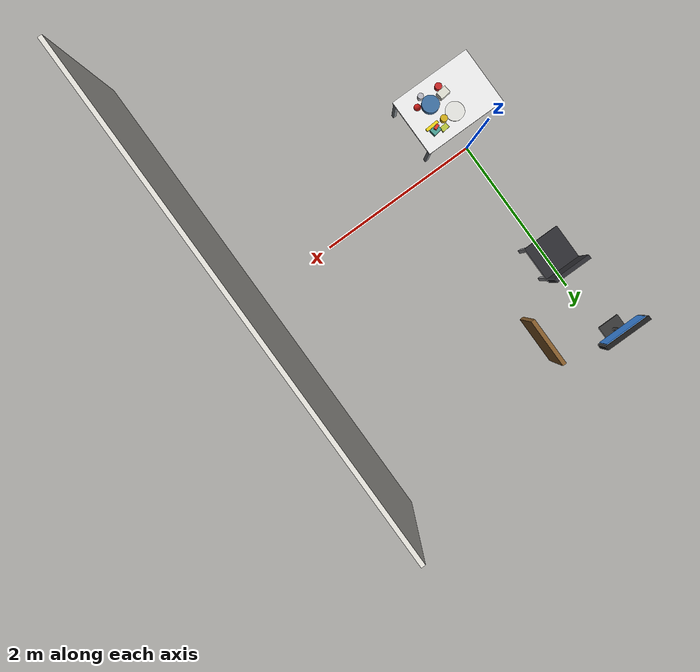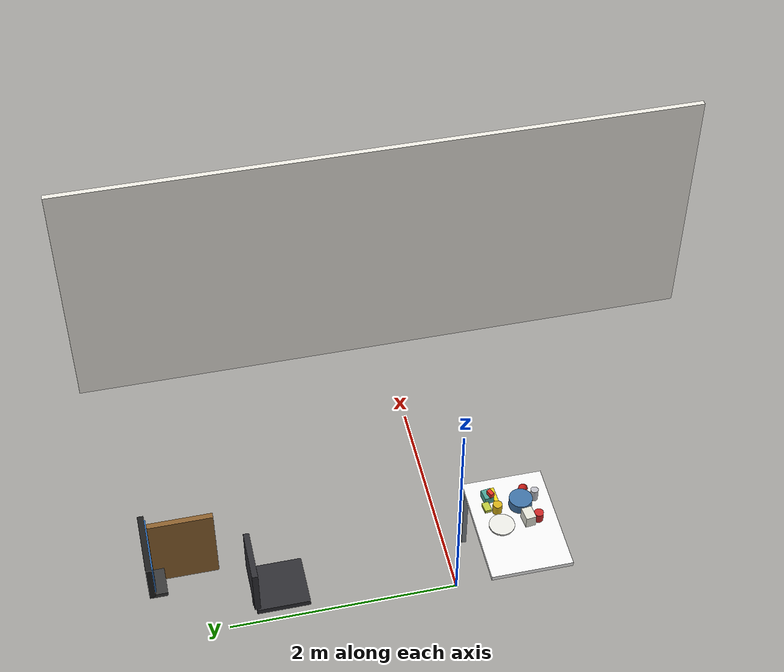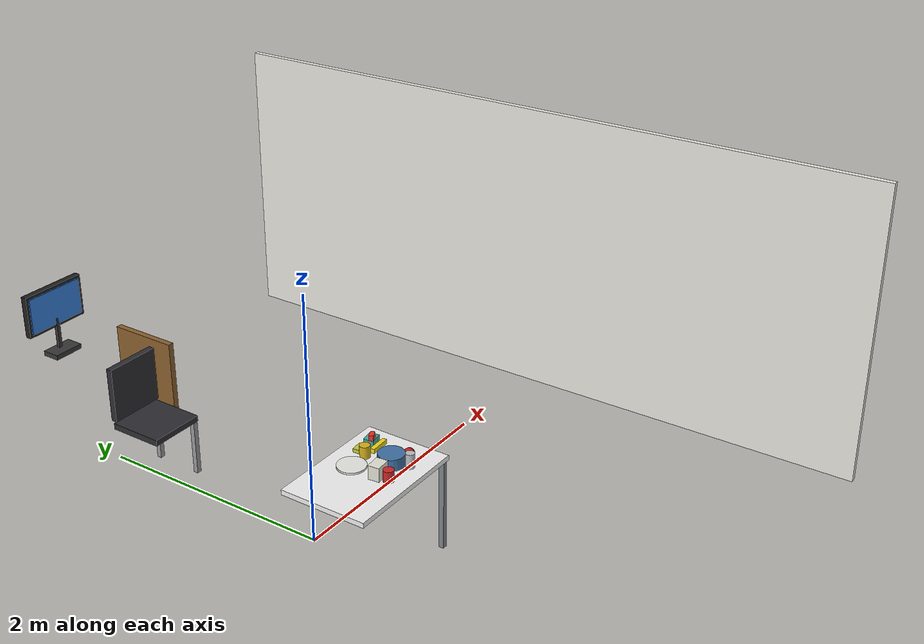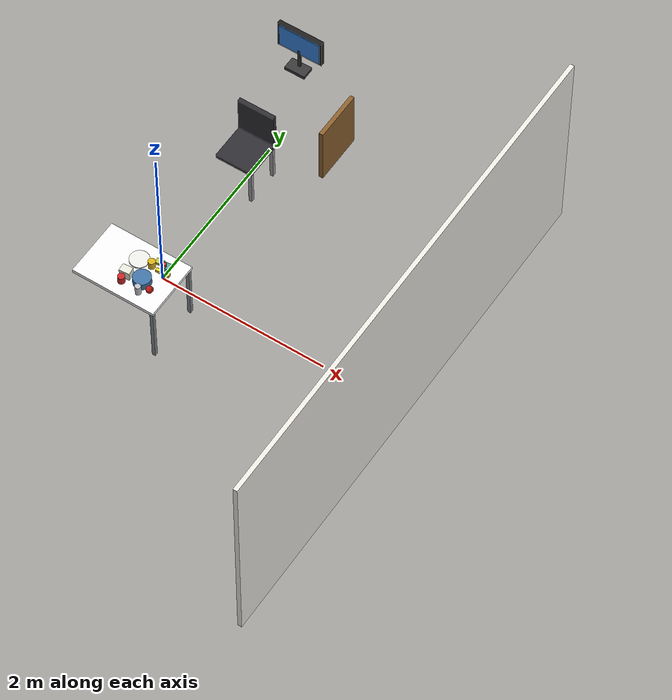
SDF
<sdf version="1.10">
 <world name="bps_room">
  <model name="wall_east">
   <static>true</static>
   <pose>3 0 1.25 0 0 0</pose>
   <link name="link">
    <collision name="collision">
     <geometry><box><size>0.050000000000000003 6 2.5</size></box></geometry>
    </collision>
    <visual name="visual">
     <geometry><box><size>0.050000000000000003 6 2.5</size></box></geometry>
     <material>
      <ambient>0.930000007 0.920000017 0.889999986 1</ambient>
      <diffuse>0.930000007 0.920000017 0.889999986 1</diffuse>
     </material>
    </visual>
    <inertial>
     <mass>1</mass>
     <inertia><ixx>1</ixx><ixy>0</ixy><ixz>0</ixz><iyy>1</iyy><iyz>0</iyz><izz>1</izz></inertia>
    </inertial>
   </link>
  </model>
  <model name="desk_leg_right">
   <static>true</static>
   <pose>0.65000000000000002 2.2999999999999998 0.375 0 0 0</pose>
   <link name="link">
    <collision name="collision">
     <geometry><box><size>0.050000000000000003 0.59999999999999998 0.75</size></box></geometry>
    </collision>
    <visual name="visual">
     <geometry><box><size>0.050000000000000003 0.59999999999999998 0.75</size></box></geometry>
     <material>
      <ambient>0.550000012 0.379999995 0.180000007 1</ambient>
      <diffuse>0.550000012 0.379999995 0.180000007 1</diffuse>
     </material>
    </visual>
    <inertial>
     <mass>1</mass>
     <inertia><ixx>1</ixx><ixy>0</ixy><ixz>0</ixz><iyy>1</iyy><iyz>0</iyz><izz>1</izz></inertia>
    </inertial>
   </link>
  </model>
  <model name="monitor_base">
   <static>true</static>
   <pose>0 2.5499999999999998 0.81999999999999995 0 0 0</pose>
   <link name="link">
    <collision name="collision">
     <geometry><box><size>0.25 0.14999999999999999 0.040000000000000001</size></box></geometry>
    </collision>
    <visual name="visual">
     <geometry><box><size>0.25 0.14999999999999999 0.040000000000000001</size></box></geometry>
     <material>
      <ambient>0.219999999 0.219999999 0.219999999 1</ambient>
      <diffuse>0.219999999 0.219999999 0.219999999 1</diffuse>
     </material>
    </visual>
    <inertial>
     <mass>1</mass>
     <inertia><ixx>1</ixx><ixy>0</ixy><ixz>0</ixz><iyy>1</iyy><iyz>0</iyz><izz>1</izz></inertia>
    </inertial>
   </link>
  </model>
  <model name="monitor_stand">
   <static>true</static>
   <pose>0 2.5800000000000001 0.96999999999999997 0 0 0</pose>
   <link name="link">
    <collision name="collision">
     <geometry><box><size>0.029999999999999999 0.029999999999999999 0.26000000000000001</size></box></geometry>
    </collision>
    <visual name="visual">
     <geometry><box><size>0.029999999999999999 0.029999999999999999 0.26000000000000001</size></box></geometry>
     <material>
      <ambient>0.219999999 0.219999999 0.219999999 1</ambient>
      <diffuse>0.219999999 0.219999999 0.219999999 1</diffuse>
     </material>
    </visual>
    <inertial>
     <mass>1</mass>
     <inertia><ixx>1</ixx><ixy>0</ixy><ixz>0</ixz><iyy>1</iyy><iyz>0</iyz><izz>1</izz></inertia>
    </inertial>
   </link>
  </model>
  <model name="monitor_screen">
   <static>true</static>
   <pose>0 2.6000000000000001 1.2 0 0 0</pose>
   <link name="link">
    <collision name="collision">
     <geometry><box><size>0.55000000000000004 0.050000000000000003 0.34999999999999998</size></box></geometry>
    </collision>
    <visual name="visual">
     <geometry><box><size>0.55000000000000004 0.050000000000000003 0.34999999999999998</size></box></geometry>
     <material>
      <ambient>0.119999997 0.119999997 0.119999997 1</ambient>
      <diffuse>0.119999997 0.119999997 0.119999997 1</diffuse>
     </material>
    </visual>
    <inertial>
     <mass>1</mass>
     <inertia><ixx>1</ixx><ixy>0</ixy><ixz>0</ixz><iyy>1</iyy><iyz>0</iyz><izz>1</izz></inertia>
    </inertial>
   </link>
  </model>
  <model name="monitor_face">
   <static>true</static>
   <pose>0 2.5699999999999998 1.2 0 0 0</pose>
   <link name="link">
    <visual name="visual">
     <geometry><box><size>0.5 0.01 0.29999999999999999</size></box></geometry>
     <material>
      <ambient>0.219999999 0.519999981 0.879999995 1</ambient>
      <diffuse>0.219999999 0.519999981 0.879999995 1</diffuse>
      <emissive>0.100000001 0.25 0.449999988 1</emissive>
     </material>
    </visual>
    <inertial>
     <mass>1</mass>
     <inertia><ixx>1</ixx><ixy>0</ixy><ixz>0</ixz><iyy>1</iyy><iyz>0</iyz><izz>1</izz></inertia>
    </inertial>
   </link>
  </model>
  <model name="chair_seat">
   <static>true</static>
   <pose>0 1.55 0.47999999999999998 0 0 0</pose>
   <link name="link">
    <collision name="collision">
     <geometry><box><size>0.45000000000000001 0.45000000000000001 0.050000000000000003</size></box></geometry>
    </collision>
    <visual name="visual">
     <geometry><box><size>0.45000000000000001 0.45000000000000001 0.050000000000000003</size></box></geometry>
     <material>
      <ambient>0.180000007 0.180000007 0.200000003 1</ambient>
      <diffuse>0.180000007 0.180000007 0.200000003 1</diffuse>
     </material>
    </visual>
    <inertial>
     <mass>1</mass>
     <inertia><ixx>1</ixx><ixy>0</ixy><ixz>0</ixz><iyy>1</iyy><iyz>0</iyz><izz>1</izz></inertia>
    </inertial>
   </link>
  </model>
  <model name="chair_back">
   <static>true</static>
   <pose>0 1.77 0.75 0 0 0</pose>
   <link name="link">
    <collision name="collision">
     <geometry><box><size>0.45000000000000001 0.050000000000000003 0.45000000000000001</size></box></geometry>
    </collision>
    <visual name="visual">
     <geometry><box><size>0.45000000000000001 0.050000000000000003 0.45000000000000001</size></box></geometry>
     <material>
      <ambient>0.180000007 0.180000007 0.200000003 1</ambient>
      <diffuse>0.180000007 0.180000007 0.200000003 1</diffuse>
     </material>
    </visual>
    <inertial>
     <mass>1</mass>
     <inertia><ixx>1</ixx><ixy>0</ixy><ixz>0</ixz><iyy>1</iyy><iyz>0</iyz><izz>1</izz></inertia>
    </inertial>
   </link>
  </model>
  <model name="chair_leg_fr">
   <static>true</static>
   <pose>0.20000000000000001 1.3500000000000001 0.23999999999999999 0 0 0</pose>
   <link name="link">
    <collision name="collision">
     <geometry><box><size>0.040000000000000001 0.040000000000000001 0.47999999999999998</size></box></geometry>
    </collision>
    <visual name="visual">
     <geometry><box><size>0.040000000000000001 0.040000000000000001 0.47999999999999998</size></box></geometry>
     <material>
      <ambient>0.600000024 0.600000024 0.620000005 1</ambient>
      <diffuse>0.600000024 0.600000024 0.620000005 1</diffuse>
     </material>
    </visual>
    <inertial>
     <mass>1</mass>
     <inertia><ixx>1</ixx><ixy>0</ixy><ixz>0</ixz><iyy>1</iyy><iyz>0</iyz><izz>1</izz></inertia>
    </inertial>
   </link>
  </model>
  <model name="chair_leg_br">
   <static>true</static>
   <pose>0.20000000000000001 1.75 0.23999999999999999 0 0 0</pose>
   <link name="link">
    <collision name="collision">
     <geometry><box><size>0.040000000000000001 0.040000000000000001 0.47999999999999998</size></box></geometry>
    </collision>
    <visual name="visual">
     <geometry><box><size>0.040000000000000001 0.040000000000000001 0.47999999999999998</size></box></geometry>
     <material>
      <ambient>0.600000024 0.600000024 0.620000005 1</ambient>
      <diffuse>0.600000024 0.600000024 0.620000005 1</diffuse>
     </material>
    </visual>
    <inertial>
     <mass>1</mass>
     <inertia><ixx>1</ixx><ixy>0</ixy><ixz>0</ixz><iyy>1</iyy><iyz>0</iyz><izz>1</izz></inertia>
    </inertial>
   </link>
  </model>
  <model name="experiment_table">
   <static>true</static>
   <pose>0 -0.5 0.75 0 0 0</pose>
   <link name="link">
    <collision name="collision">
     <geometry><box><size>1 0.69999999999999996 0.040000000000000001</size></box></geometry>
    </collision>
    <visual name="visual">
     <geometry><box><size>1 0.69999999999999996 0.040000000000000001</size></box></geometry>
     <material>
      <ambient>0.959999979 0.959999979 0.959999979 1</ambient>
      <diffuse>0.959999979 0.959999979 0.959999979 1</diffuse>
     </material>
    </visual>
    <inertial>
     <mass>1</mass>
     <inertia><ixx>1</ixx><ixy>0</ixy><ixz>0</ixz><iyy>1</iyy><iyz>0</iyz><izz>1</izz></inertia>
    </inertial>
   </link>
  </model>
  <model name="table_leg_fr">
   <static>true</static>
   <pose>0.46999999999999997 -0.81999999999999995 0.375 0 0 0</pose>
   <link name="link">
    <collision name="collision">
     <geometry><box><size>0.040000000000000001 0.040000000000000001 0.75</size></box></geometry>
    </collision>
    <visual name="visual">
     <geometry><box><size>0.040000000000000001 0.040000000000000001 0.75</size></box></geometry>
     <material>
      <ambient>0.5 0.519999981 0.540000021 1</ambient>
      <diffuse>0.5 0.519999981 0.540000021 1</diffuse>
     </material>
    </visual>
    <inertial>
     <mass>1</mass>
     <inertia><ixx>1</ixx><ixy>0</ixy><ixz>0</ixz><iyy>1</iyy><iyz>0</iyz><izz>1</izz></inertia>
    </inertial>
   </link>
  </model>
  <model name="table_leg_br">
   <static>true</static>
   <pose>0.46999999999999997 -0.17999999999999999 0.375 0 0 0</pose>
   <link name="link">
    <collision name="collision">
     <geometry><box><size>0.040000000000000001 0.040000000000000001 0.75</size></box></geometry>
    </collision>
    <visual name="visual">
     <geometry><box><size>0.040000000000000001 0.040000000000000001 0.75</size></box></geometry>
     <material>
      <ambient>0.5 0.519999981 0.540000021 1</ambient>
      <diffuse>0.5 0.519999981 0.540000021 1</diffuse>
     </material>
    </visual>
    <inertial>
     <mass>1</mass>
     <inertia><ixx>1</ixx><ixy>0</ixy><ixz>0</ixz><iyy>1</iyy><iyz>0</iyz><izz>1</izz></inertia>
    </inertial>
   </link>
  </model>
  <model name="obj_tissue_box">
   <static>true</static>
   <pose>0 -0.59999999999999998 0.82499999999999996 0 0 0.09999999999999995</pose>
   <link name="link">
    <collision name="collision">
     <geometry><box><size>0.12 0.089999999999999997 0.11</size></box></geometry>
    </collision>
    <visual name="visual">
     <geometry><box><size>0.12 0.089999999999999997 0.11</size></box></geometry>
     <material>
      <ambient>0.899999976 0.899999976 0.850000024 1</ambient>
      <diffuse>0.899999976 0.899999976 0.850000024 1</diffuse>
     </material>
     <plugin name="gz::sim::systems::Label" filename="gz-sim-label-system"><label>4</label></plugin>
    </visual>
    <inertial>
     <mass>1</mass>
     <inertia><ixx>1</ixx><ixy>0</ixy><ixz>0</ixz><iyy>1</iyy><iyz>0</iyz><izz>1</izz></inertia>
    </inertial>
   </link>
  </model>
  <model name="obj_cup">
   <static>true</static>
   <pose>0 -0.68999999999999995 0.81499999999999995 0 0 0</pose>
   <link name="link">
    <collision name="collision">
     <geometry>
      <cylinder><radius>0.040000000000000001</radius><length>0.089999999999999997</length></cylinder>
     </geometry>
    </collision>
    <visual name="visual">
     <geometry>
      <cylinder><radius>0.040000000000000001</radius><length>0.089999999999999997</length></cylinder>
     </geometry>
     <material>
      <ambient>0.800000012 0.150000006 0.150000006 1</ambient>
      <diffuse>0.800000012 0.150000006 0.150000006 1</diffuse>
      <specular>0.400000006 0.400000006 0.400000006 1</specular>
     </material>
     <plugin name="gz::sim::systems::Label" filename="gz-sim-label-system"><label>5</label></plugin>
    </visual>
    <inertial>
     <mass>1</mass>
     <inertia><ixx>1</ixx><ixy>0</ixy><ixz>0</ixz><iyy>1</iyy><iyz>0</iyz><izz>1</izz></inertia>
    </inertial>
   </link>
  </model>
  <model name="obj_bowl">
   <static>true</static>
   <pose>0.18260000000000001 -0.58120000000000005 0.81499999999999995 0 0 0</pose>
   <link name="link">
    <collision name="collision">
     <geometry>
      <cylinder><radius>0.10000000000000001</radius><length>0.089999999999999997</length></cylinder>
     </geometry>
    </collision>
    <visual name="visual">
     <geometry>
      <cylinder><radius>0.10000000000000001</radius><length>0.089999999999999997</length></cylinder>
     </geometry>
     <material>
      <ambient>0.25 0.449999988 0.649999976 1</ambient>
      <diffuse>0.25 0.449999988 0.649999976 1</diffuse>
      <specular>0.300000012 0.300000012 0.300000012 1</specular>
     </material>
     <plugin name="gz::sim::systems::Label" filename="gz-sim-label-system"><label>6</label></plugin>
    </visual>
    <inertial>
     <mass>1</mass>
     <inertia><ixx>1</ixx><ixy>0</ixy><ixz>0</ixz><iyy>1</iyy><iyz>0</iyz><izz>1</izz></inertia>
    </inertial>
   </link>
  </model>
  <model name="obj_apple">
   <static>true</static>
   <pose>0.315 -0.6401 0.81000000000000005 0 0 0</pose>
   <link name="link">
    <collision name="collision">
     <geometry><sphere><radius>0.040000000000000001</radius></sphere></geometry>
    </collision>
    <visual name="visual">
     <geometry><sphere><radius>0.040000000000000001</radius></sphere></geometry>
     <material>
      <ambient>0.75 0.100000001 0.0799999982 1</ambient>
      <diffuse>0.75 0.100000001 0.0799999982 1</diffuse>
      <specular>0.5 0.5 0.5 1</specular>
     </material>
     <plugin name="gz::sim::systems::Label" filename="gz-sim-label-system"><label>7</label></plugin>
    </visual>
    <inertial>
     <mass>1</mass>
     <inertia><ixx>1</ixx><ixy>0</ixy><ixz>0</ixz><iyy>1</iyy><iyz>0</iyz><izz>1</izz></inertia>
    </inertial>
   </link>
  </model>
  <model name="obj_can">
   <static>true</static>
   <pose>0.22409999999999999 -0.71289999999999998 0.82750000000000001 0 0 0</pose>
   <link name="link">
    <collision name="collision">
     <geometry><cylinder><radius>0.033000000000000002</radius><length>0.115</length></cylinder></geometry>
    </collision>
    <visual name="visual">
     <geometry><cylinder><radius>0.033000000000000002</radius><length>0.115</length></cylinder></geometry>
     <material>
      <ambient>0.75 0.75 0.779999971 1</ambient>
      <diffuse>0.75 0.75 0.779999971 1</diffuse>
      <specular>0.699999988 0.699999988 0.699999988 1</specular>
     </material>
     <plugin name="gz::sim::systems::Label" filename="gz-sim-label-system"><label>8</label></plugin>
    </visual>
    <inertial>
     <mass>1</mass>
     <inertia><ixx>1</ixx><ixy>0</ixy><ixz>0</ixz><iyy>1</iyy><iyz>0</iyz><izz>1</izz></inertia>
    </inertial>
   </link>
  </model>
  <model name="obj_plate">
   <static>true</static>
   <pose>0 -0.37 0.77749999999999997 0 0 0</pose>
   <link name="link">
    <collision name="collision">
     <geometry><cylinder><radius>0.11</radius><length>0.014999999999999999</length></cylinder></geometry>
    </collision>
    <visual name="visual">
     <geometry><cylinder><radius>0.11</radius><length>0.014999999999999999</length></cylinder></geometry>
     <material>
      <ambient>0.920000017 0.920000017 0.899999976 1</ambient>
      <diffuse>0.920000017 0.920000017 0.899999976 1</diffuse>
     </material>
     <plugin name="gz::sim::systems::Label" filename="gz-sim-label-system"><label>12</label></plugin>
    </visual>
    <inertial>
     <mass>1</mass>
     <inertia><ixx>1</ixx><ixy>0</ixy><ixz>0</ixz><iyy>1</iyy><iyz>0</iyz><izz>1</izz></inertia>
    </inertial>
   </link>
  </model>
  <model name="obj_mug">
   <static>true</static>
   <pose>0.155 -0.37 0.8175 0 0 0</pose>
   <link name="link">
    <collision name="collision">
     <geometry>
      <cylinder><radius>0.040000000000000001</radius><length>0.095000000000000001</length></cylinder>
     </geometry>
    </collision>
    <visual name="visual">
     <geometry>
      <cylinder><radius>0.040000000000000001</radius><length>0.095000000000000001</length></cylinder>
     </geometry>
     <material>
      <ambient>0.850000024 0.699999988 0.100000001 1</ambient>
      <diffuse>0.850000024 0.699999988 0.100000001 1</diffuse>
      <specular>0.300000012 0.300000012 0.300000012 1</specular>
     </material>
     <plugin name="gz::sim::systems::Label" filename="gz-sim-label-system"><label>13</label></plugin>
    </visual>
    <inertial>
     <mass>1</mass>
     <inertia><ixx>1</ixx><ixy>0</ixy><ixz>0</ixz><iyy>1</iyy><iyz>0</iyz><izz>1</izz></inertia>
    </inertial>
   </link>
  </model>
  <model name="obj_sponge">
   <static>true</static>
   <pose>0.20000000000000001 -0.28999999999999998 0.78500000000000003 0 0 0.09999999999999995</pose>
   <link name="link">
    <collision name="collision">
     <geometry><box><size>0.089999999999999997 0.059999999999999998 0.029999999999999999</size></box></geometry>
    </collision>
    <visual name="visual">
     <geometry><box><size>0.089999999999999997 0.059999999999999998 0.029999999999999999</size></box></geometry>
     <material><ambient>0.75 0.800000012 0.25 1</ambient><diffuse>0.75 0.800000012 0.25 1</diffuse></material>
     <plugin name="gz::sim::systems::Label" filename="gz-sim-label-system"><label>14</label></plugin>
    </visual>
    <inertial>
     <mass>1</mass>
     <inertia><ixx>1</ixx><ixy>0</ixy><ixz>0</ixz><iyy>1</iyy><iyz>0</iyz><izz>1</izz></inertia>
    </inertial>
   </link>
  </model>
  <model name="obj_container">
   <static>true</static>
   <pose>0.29999999999999999 -0.32000000000000001 0.80500000000000005 0 0 0.14999999999999988</pose>
   <link name="link">
    <collision name="collision">
     <geometry><box><size>0.10000000000000001 0.080000000000000002 0.070000000000000007</size></box></geometry>
    </collision>
    <visual name="visual">
     <geometry><box><size>0.10000000000000001 0.080000000000000002 0.070000000000000007</size></box></geometry>
     <material>
      <ambient>0.300000012 0.649999976 0.600000024 1</ambient>
      <diffuse>0.300000012 0.649999976 0.600000024 1</diffuse>
      <specular>0.400000006 0.400000006 0.400000006 1</specular>
     </material>
     <plugin name="gz::sim::systems::Label" filename="gz-sim-label-system"><label>15</label></plugin>
    </visual>
    <inertial>
     <mass>1</mass>
     <inertia><ixx>1</ixx><ixy>0</ixy><ixz>0</ixz><iyy>1</iyy><iyz>0</iyz><izz>1</izz></inertia>
    </inertial>
   </link>
  </model>
  <model name="obj_toy">
   <static>true</static>
   <pose>0.28000000000000003 -0.34000000000000002 0.86250000000000004 0 0 0.39999999999999997</pose>
   <link name="link">
    <collision name="collision">
     <geometry><box><size>0.059999999999999998 0.035000000000000003 0.044999999999999998</size></box></geometry>
    </collision>
    <visual name="visual">
     <geometry><box><size>0.059999999999999998 0.035000000000000003 0.044999999999999998</size></box></geometry>
     <material>
      <ambient>0.899999976 0.200000003 0.150000006 1</ambient>
      <diffuse>0.899999976 0.200000003 0.150000006 1</diffuse>
      <specular>0.5 0.5 0.5 1</specular>
     </material>
     <plugin name="gz::sim::systems::Label" filename="gz-sim-label-system"><label>16</label></plugin>
    </visual>
    <inertial>
     <mass>1</mass>
     <inertia><ixx>1</ixx><ixy>0</ixy><ixz>0</ixz><iyy>1</iyy><iyz>0</iyz><izz>1</izz></inertia>
    </inertial>
   </link>
  </model>
  <model name="obj_banana">
   <static>true</static>
   <pose>0.29999999999999999 -0.38250000000000001 0.78749999999999998 0 0 0.049999999999999989</pose>
   <link name="link">
    <collision name="collision">
     <geometry><box><size>0.16 0.035000000000000003 0.035000000000000003</size></box></geometry>
    </collision>
    <visual name="visual">
     <geometry><box><size>0.16 0.035000000000000003 0.035000000000000003</size></box></geometry>
     <material>
      <ambient>0.949999988 0.850000024 0.100000001 1</ambient>
      <diffuse>0.949999988 0.850000024 0.100000001 1</diffuse>
      <specular>0.200000003 0.200000003 0.200000003 1</specular>
     </material>
     <plugin name="gz::sim::systems::Label" filename="gz-sim-label-system"><label>17</label></plugin>
    </visual>
    <inertial>
     <mass>1</mass>
     <inertia><ixx>1</ixx><ixy>0</ixy><ixz>0</ixz><iyy>1</iyy><iyz>0</iyz><izz>1</izz></inertia>
    </inertial>
   </link>
  </model>
 </world>
</sdf>
